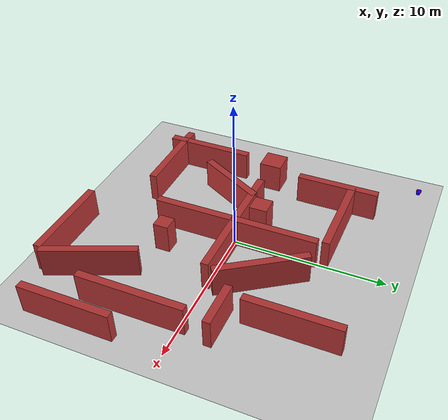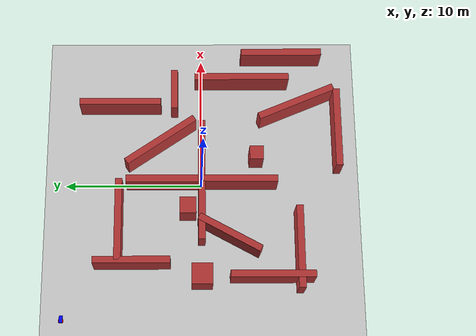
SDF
<?xml version="1.0" ?>
<sdf version="1.8">
    <world name="custom_world">
        <physics name="default_physics" type="ignition">
            <max_step_size>0.001</max_step_size>
            <real_time_factor>1</real_time_factor>
        </physics>
        <plugin
            filename="gz-sim-physics-system"
            name="gz::sim::systems::Physics">
        </plugin>
        <plugin
            filename="gz-sim-user-commands-system"
            name="gz::sim::systems::UserCommands">
        </plugin>
        <plugin
            filename="gz-sim-scene-broadcaster-system"
            name="gz::sim::systems::SceneBroadcaster">
        </plugin>
        <plugin
            filename="libignition-gazebo-sensors-system.so"
            name="ignition::gazebo::systems::Sensors">
            <render_engine>ogre2</render_engine>
        </plugin>
        <plugin filename="libignition-gazebo-imu-system.so"
            name="ignition::gazebo::systems::Imu">
        </plugin>
        <light type="directional" name="sun">
            <cast_shadows>true</cast_shadows>
            <pose>0 0 10 0 0 0</pose>
            <diffuse>0.8 0.8 0.8 1</diffuse>
            <specular>0.2 0.2 0.2 1</specular>
            <attenuation>
                <range>1000</range>
                <constant>0.9</constant>
                <linear>0.01</linear>
                <quadratic>0.001</quadratic>
            </attenuation>
            <direction>-0.5 0.1 -0.9</direction>
        </light>
        <model name="ground_plane">
            <static>true</static>
            <link name="link">
                <collision name="collision">
                    <geometry>
                        <plane>
                            <normal>0 0 1</normal>
                        </plane>
                    </geometry>
                </collision>
                <visual name="visual">
                    <geometry>
                        <plane>
                            <normal>0 0 1</normal>
                            <size>20 20</size>
                        </plane>
                    </geometry>
                    <material>
                        <ambient>0.8 0.8 0.8 1</ambient>
                        <diffuse>0.8 0.8 0.8 1</diffuse>
                        <specular>0.8 0.8 0.8 1</specular>
                    </material>
                </visual>
            </link>
        </model>

        <model name="wall1">
            <static>true</static>
            <pose>0 0 1 0 0 0</pose>
            <link name="link">
                <collision name="collision">
                    <geometry>
                        <box>
                            <size>0.5 11 2</size>
                        </box>
                    </geometry>
                </collision>
                <visual name="visual">
                    <geometry>
                        <box>
                            <size>0.5 11 2</size>
                        </box>
                    </geometry>
                    <material>
                        <ambient>0.7 0.2 0.2 1</ambient>
                        <diffuse>0.7 0.2 0.2 1</diffuse>
                        <specular>0.7 0.2 0.2 1</specular>
                    </material>
                </visual>
            </link>
        </model>

        <model name="wall2">
            <static>true</static>
            <pose>0 0 1 0 0 0</pose>
            <link name="link">
                <collision name="collision">
                    <geometry>
                        <box>
                            <size>9 0.5 2</size>
                        </box>
                    </geometry>
                </collision>
                <visual name="visual">
                    <geometry>
                        <box>
                            <size>9 0.5 2</size>
                        </box>
                    </geometry>
                    <material>
                        <ambient>0.7 0.2 0.2 1</ambient>
                        <diffuse>0.7 0.2 0.2 1</diffuse>
                        <specular>0.7 0.2 0.2 1</specular>
                    </material>
                </visual>
            </link>
        </model>

        <model name="wall3">
            <static>true</static>
            <pose>3 3 1 0 0 0.6</pose>
            <link name="link">
                <collision name="collision">
                    <geometry>
                        <box>
                            <size>0.5 6 2</size>
                        </box>
                    </geometry>
                </collision>
                <visual name="visual">
                    <geometry>
                        <box>
                            <size>0.5 6 2</size>
                        </box>
                    </geometry>
                    <material>
                        <ambient>0.7 0.2 0.2 1</ambient>
                        <diffuse>0.7 0.2 0.2 1</diffuse>
                        <specular>0.7 0.2 0.2 1</specular>
                    </material>
                </visual>
            </link>
        </model>

        <model name="wall4">
            <static>true</static>
            <pose>-4 -2 1 0 0 -0.5</pose>
            <link name="link">
                <collision name="collision">
                    <geometry>
                        <box>
                            <size>0.5 5 2</size>
                        </box>
                    </geometry>
                </collision>
                <visual name="visual">
                    <geometry>
                        <box>
                            <size>0.5 5 2</size>
                        </box>
                    </geometry>
                    <material>
                        <ambient>0.7 0.2 0.2 1</ambient>
                        <diffuse>0.7 0.2 0.2 1</diffuse>
                        <specular>0.7 0.2 0.2 1</specular>
                    </material>
                </visual>
            </link>
        </model>

        <model name="wall5">
            <static>true</static>
            <pose>-6 5 1 0 0 0</pose>
            <link name="link">
                <collision name="collision">
                    <geometry>
                        <box>
                            <size>0.5 5.5 2</size>
                        </box>
                    </geometry>
                </collision>
                <visual name="visual">
                    <geometry>
                        <box>
                            <size>0.5 5.5 2</size>
                        </box>
                    </geometry>
                    <material>
                        <ambient>0.7 0.2 0.2 1</ambient>
                        <diffuse>0.7 0.2 0.2 1</diffuse>
                        <specular>0.7 0.2 0.2 1</specular>
                    </material>
                </visual>
            </link>
        </model>

        <model name="wall6">
            <static>true</static>
            <pose>-3 6 1 0 0 0</pose>
            <link name="link">
                <collision name="collision">
                    <geometry>
                        <box>
                            <size>6 0.5 2</size>
                        </box>
                    </geometry>
                </collision>
                <visual name="visual">
                    <geometry>
                        <box>
                            <size>6 0.5 2</size>
                        </box>
                    </geometry>
                    <material>
                        <ambient>0.7 0.2 0.2 1</ambient>
                        <diffuse>0.7 0.2 0.2 1</diffuse>
                        <specular>0.7 0.2 0.2 1</specular>
                    </material>
                </visual>
            </link>
        </model>

        <model name="wall7">
            <static>true</static>
            <pose>6 6 1 0 0 0</pose>
            <link name="link">
                <collision name="collision">
                    <geometry>
                        <box>
                            <size>0.5 6 2</size>
                        </box>
                    </geometry>
                </collision>
                <visual name="visual">
                    <geometry>
                        <box>
                            <size>0.5 6 2</size>
                        </box>
                    </geometry>
                    <material>
                        <ambient>0.7 0.2 0.2 1</ambient>
                        <diffuse>0.7 0.2 0.2 1</diffuse>
                        <specular>0.7 0.2 0.2 1</specular>
                    </material>
                </visual>
            </link>
        </model>

        <model name="wall8">
            <static>true</static>
            <pose>7 2 1 0 0 0</pose>
            <link name="link">
                <collision name="collision">
                    <geometry>
                        <box>
                            <size>3 0.5 2</size>
                        </box>
                    </geometry>
                </collision>
                <visual name="visual">
                    <geometry>
                        <box>
                            <size>3 0.5 2</size>
                        </box>
                    </geometry>
                    <material>
                        <ambient>0.7 0.2 0.2 1</ambient>
                        <diffuse>0.7 0.2 0.2 1</diffuse>
                        <specular>0.7 0.2 0.2 1</specular>
                    </material>
                </visual>
            </link>
        </model>

        <model name="wall9">
            <static>true</static>
            <pose>-7 -5 1 0 0 0</pose>
            <link name="link">
                <collision name="collision">
                    <geometry>
                        <box>
                            <size>0.5 6 2</size>
                        </box>
                    </geometry>
                </collision>
                <visual name="visual">
                    <geometry>
                        <box>
                            <size>0.5 6 2</size>
                        </box>
                    </geometry>
                    <material>
                        <ambient>0.7 0.2 0.2 1</ambient>
                        <diffuse>0.7 0.2 0.2 1</diffuse>
                        <specular>0.7 0.2 0.2 1</specular>
                    </material>
                </visual>
            </link>
        </model>

        <model name="wall10">
            <static>true</static>
            <pose>-5 -7 1 0 0 0</pose>
            <link name="link">
                <collision name="collision">
                    <geometry>
                        <box>
                            <size>6 0.5 2</size>
                        </box>
                    </geometry>
                </collision>
                <visual name="visual">
                    <geometry>
                        <box>
                            <size>6 0.5 2</size>
                        </box>
                    </geometry>
                    <material>
                        <ambient>0.7 0.2 0.2 1</ambient>
                        <diffuse>0.7 0.2 0.2 1</diffuse>
                        <specular>0.7 0.2 0.2 1</specular>
                    </material>
                </visual>
            </link>
        </model>

        <model name="wall11">
            <static>true</static>
            <pose>6 -7 1 0 0 0.4</pose>
            <link name="link">
                <collision name="collision">
                    <geometry>
                        <box>
                            <size>0.5 6 2</size>
                        </box>
                    </geometry>
                </collision>
                <visual name="visual">
                    <geometry>
                        <box>
                            <size>0.5 6 2</size>
                        </box>
                    </geometry>
                    <material>
                        <ambient>0.7 0.2 0.2 1</ambient>
                        <diffuse>0.7 0.2 0.2 1</diffuse>
                        <specular>0.7 0.2 0.2 1</specular>
                    </material>
                </visual>
            </link>
        </model>

        <model name="wall12">
            <static>true</static>
            <pose>8 -3 1 0 0 0</pose>
            <link name="link">
                <collision name="collision">
                    <geometry>
                        <box>
                            <size>0.5 7 2</size>
                        </box>
                    </geometry>
                </collision>
                <visual name="visual">
                    <geometry>
                        <box>
                            <size>0.5 7 2</size>
                        </box>
                    </geometry>
                    <material>
                        <ambient>0.7 0.2 0.2 1</ambient>
                        <diffuse>0.7 0.2 0.2 1</diffuse>
                        <specular>0.7 0.2 0.2 1</specular>
                    </material>
                </visual>
            </link>
        </model>

        <model name="wall13">
            <static>true</static>
            <pose>4 -10 1 0 0 0</pose>
            <link name="link">
                <collision name="collision">
                    <geometry>
                        <box>
                            <size>6 0.5 2</size>
                        </box>
                    </geometry>
                </collision>
                <visual name="visual">
                    <geometry>
                        <box>
                            <size>6 0.5 2</size>
                        </box>
                    </geometry>
                    <material>
                        <ambient>0.7 0.2 0.2 1</ambient>
                        <diffuse>0.7 0.2 0.2 1</diffuse>
                        <specular>0.7 0.2 0.2 1</specular>
                    </material>
                </visual>
            </link>
        </model>

        <model name="wall14">
            <static>true</static>
            <pose>10 -6 1 0 0 0</pose>
            <link name="link">
                <collision name="collision">
                    <geometry>
                        <box>
                            <size>0.5 6 2</size>
                        </box>
                    </geometry>
                </collision>
                <visual name="visual">
                    <geometry>
                        <box>
                            <size>0.5 6 2</size>
                        </box>
                    </geometry>
                    <material>
                        <ambient>0.7 0.2 0.2 1</ambient>
                        <diffuse>0.7 0.2 0.2 1</diffuse>
                        <specular>0.7 0.2 0.2 1</specular>
                    </material>
                </visual>
            </link>
        </model>

        <model name="box1">
            <static>true</static>
            <pose>-2 1 1 0 0 0</pose>
            <link name="link">
                <collision name="collision">
                    <geometry>
                        <box>
                            <size>1.2 1.2 2</size>
                        </box>
                    </geometry>
                </collision>
                <visual name="visual">
                    <geometry>
                        <box>
                            <size>1.2 1.2 2</size>
                        </box>
                    </geometry>
                    <material>
                        <ambient>0.7 0.2 0.2 1</ambient>
                        <diffuse>0.7 0.2 0.2 1</diffuse>
                        <specular>0.7 0.2 0.2 1</specular>
                    </material>
                </visual>
            </link>
        </model>

        <model name="box2">
            <static>true</static>
            <pose>2 -4 1 0 0 0</pose>
            <link name="link">
                <collision name="collision">
                    <geometry>
                        <box>
                            <size>1.0 1.0 2</size>
                        </box>
                    </geometry>
                </collision>
                <visual name="visual">
                    <geometry>
                        <box>
                            <size>1.0 1.0 2</size>
                        </box>
                    </geometry>
                    <material>
                        <ambient>0.7 0.2 0.2 1</ambient>
                        <diffuse>0.7 0.2 0.2 1</diffuse>
                        <specular>0.7 0.2 0.2 1</specular>
                    </material>
                </visual>
            </link>
        </model>

        <model name="box3">
            <static>true</static>
            <pose>-7 0 1 0 0 0</pose>
            <link name="link">
                <collision name="collision">
                    <geometry>
                        <box>
                            <size>1.5 1.5 2</size>
                        </box>
                    </geometry>
                </collision>
                <visual name="visual">
                    <geometry>
                        <box>
                            <size>1.5 1.5 2</size>
                        </box>
                    </geometry>
                    <material>
                        <ambient>0.7 0.2 0.2 1</ambient>
                        <diffuse>0.7 0.2 0.2 1</diffuse>
                        <specular>0.7 0.2 0.2 1</specular>
                    </material>
                </visual>
            </link>
        </model>

            <include>
                <uri>file://./my_robot_3.sdf</uri>
                <pose>-10 10 0 0 0 0</pose>
            </include>

    </world>
</sdf>

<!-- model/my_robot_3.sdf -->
<sdf version="1.8">
  <model name='vehicle_blue' canonical_link='chassis'>
    <!-- Lidar frame -->
    <frame name="lidar_frame" attached_to='chassis'>
      <pose>0.2 0 0.125 0 0 0</pose>
    </frame>

    <!-- Karosszéria -->
    <link name='chassis'>
      <pose relative_to='__model__'>0.125 0 0.1 0 0 0</pose>
      <inertial>
        <mass>1.14395</mass>
        <inertia>
          <ixx>0.095329</ixx>
          <ixy>0</ixy>
          <ixz>0</ixz>
          <iyy>0.381317</iyy>
          <iyz>0</iyz>
          <izz>0.476646</izz>
        </inertia>
      </inertial>
      <visual name='visual'>
        <geometry>
          <box>
            <size>0.5 0.25 0.125</size>
          </box>
        </geometry>
        <material>
          <ambient>0.0 0.0 1.0 1</ambient>
          <diffuse>0.0 0.0 1.0 1</diffuse>
          <specular>0.0 0.0 1.0 1</specular>
        </material>
      </visual>
      <collision name='collision'>
        <geometry>
          <box>
            <size>0.5 0.25 0.125</size>
          </box>
        </geometry>
      </collision>

      <!-- 2D LiDAR -->
      <sensor name='gpu_lidar' type='gpu_lidar'>
        <pose relative_to='lidar_frame'>0 0 0 0 0 0</pose>
        <topic>lidar</topic>
        <update_rate>10</update_rate>
        <ray>
          <scan>
            <horizontal>
              <samples>640</samples>
              <resolution>1</resolution>
              <min_angle>-1.396263</min_angle>
              <max_angle>1.396263</max_angle>
            </horizontal>
            <vertical>
              <samples>1</samples>
              <resolution>0.01</resolution>
              <min_angle>0</min_angle>
              <max_angle>0</max_angle>
            </vertical>
          </scan>
          <range>
            <min>0.08</min>
            <max>10.0</max>
            <resolution>0.01</resolution>
          </range>
        </ray>
        <alwaysOn>1</alwaysOn>
        <visualize>true</visualize>
      </sensor>

      <!-- IMU -->
      <sensor name="imu_sensor" type="imu">
        <pose>0 0 0 0 0 0</pose>
        <always_on>1</always_on>
        <update_rate>1</update_rate>
        <visualize>true</visualize>
        <topic>imu</topic>
      </sensor>
    </link>

    <!-- 3D LiDAR link és szenzor -->
    <link name='lidar_3d_link'>
      <pose relative_to='chassis'>0.2 0 0.25 0 0 0</pose>

      <sensor name='gpu_lidar_3d' type='gpu_lidar'>
        <pose>0 0 0 0 0 0</pose>
        <topic>lidar_3d_points</topic>
        <update_rate>10</update_rate>
        <ray>
          <scan>
            <horizontal>
              <samples>1024</samples>
              <resolution>1</resolution>
              <min_angle>-3.14159</min_angle>
              <max_angle>3.14159</max_angle>
            </horizontal>
            <vertical>
              <samples>16</samples>
              <resolution>1</resolution>
              <min_angle>-0.261799</min_angle>
              <max_angle>0.261799</max_angle>
            </vertical>
          </scan>
          <range>
            <min>0.1</min>
            <max>30.0</max>
            <resolution>0.01</resolution>
          </range>
        </ray>
        <alwaysOn>1</alwaysOn>
        <visualize>true</visualize>
      </sensor>
    </link>

    <!-- Bal kerék -->
    <link name='left_wheel'>
      <pose relative_to="chassis">-0.125 0.15 0 -1.5707 0 0</pose>
      <inertial>
        <mass>1</mass>
        <inertia>
          <ixx>0.043333</ixx>
          <iyy>0.043333</iyy>
          <izz>0.08</izz>
        </inertia>
      </inertial>
      <visual name='visual'>
        <geometry>
          <cylinder>
            <radius>0.1</radius>
            <length>0.05</length>
          </cylinder>
        </geometry>
        <material>
          <ambient>1.0 0.0 0.0 1</ambient>
          <diffuse>1.0 0.0 0.0 1</diffuse>
        </material>
      </visual>
      <collision name='collision'>
        <geometry>
          <cylinder>
            <radius>0.1</radius>
            <length>0.05</length>
          </cylinder>
        </geometry>
      </collision>
    </link>

    <!-- Jobb kerék -->
    <link name='right_wheel'>
      <pose relative_to="chassis">-0.125 -0.15 0 -1.5707 0 0</pose>
      <inertial>
        <mass>1</mass>
        <inertia>
          <ixx>0.043333</ixx>
          <iyy>0.043333</iyy>
          <izz>0.08</izz>
        </inertia>
      </inertial>
      <visual name='visual'>
        <geometry>
          <cylinder>
            <radius>0.1</radius>
            <length>0.05</length>
          </cylinder>
        </geometry>
        <material>
          <ambient>1.0 0.0 0.0 1</ambient>
          <diffuse>1.0 0.0 0.0 1</diffuse>
        </material>
      </visual>
      <collision name='collision'>
        <geometry>
          <cylinder>
            <radius>0.1</radius>
            <length>0.05</length>
          </cylinder>
        </geometry>
      </collision>
    </link>

    <!-- Támasztó görgő -->
    <frame name="caster_frame" attached_to='chassis'>
      <pose>0.2 0 -0.05 0 0 0</pose>
    </frame>

    <link name='caster'>
      <pose relative_to='caster_frame'/>
      <inertial>
        <mass>1</mass>
        <inertia>
          <ixx>0.016</ixx>
          <iyy>0.016</iyy>
          <izz>0.016</izz>
        </inertia>
      </inertial>
      <visual name='visual'>
        <geometry>
          <sphere>
            <radius>0.05</radius>
          </sphere>
        </geometry>
        <material>
          <ambient>0.0 1.0 0.0 1</ambient>
          <diffuse>0.0 1.0 0.0 1</diffuse>
        </material>
      </visual>
      <collision name='collision'>
        <geometry>
          <sphere>
            <radius>0.05</radius>
          </sphere>
        </geometry>
      </collision>
    </link>

    <!-- Jointok -->
    <joint name='left_wheel_joint' type='revolute'>
      <pose relative_to='left_wheel'/>
      <parent>chassis</parent>
      <child>left_wheel</child>
      <axis>
        <xyz expressed_in='__model__'>0 1 0</xyz>
      </axis>
    </joint>

    <joint name='right_wheel_joint' type='revolute'>
      <pose relative_to='right_wheel'/>
      <parent>chassis</parent>
      <child>right_wheel</child>
      <axis>
        <xyz expressed_in='__model__'>0 1 0</xyz>
      </axis>
    </joint>

    <joint name='caster_wheel' type='ball'>
      <parent>chassis</parent>
      <child>caster</child>
    </joint>

    <!-- DiffDrive plugin -->
    <plugin
      filename="libignition-gazebo-diff-drive-system.so"
      name="ignition::gazebo::systems::DiffDrive">
      <left_joint>left_wheel_joint</left_joint>
      <right_joint>right_wheel_joint</right_joint>
      <wheel_separation>0.3</wheel_separation>
      <wheel_radius>0.1</wheel_radius>

      <odom_frame>odom</odom_frame>
      <odom_publish_frequency>30</odom_publish_frequency>
      <odometry_topic>odom</odometry_topic>

      <frame_id>odom</frame_id>
      <child_frame_id>base_link</child_frame_id>

      <publish_odom>true</publish_odom>
      <publish_odom_tf>false</publish_odom_tf> <!-- false -->

      <topic>cmd_vel</topic>
    </plugin>
  </model>
</sdf>
